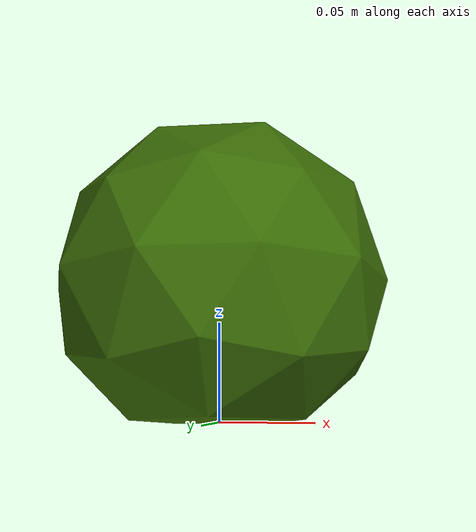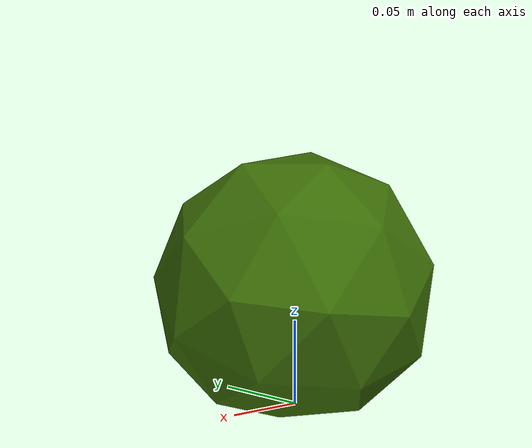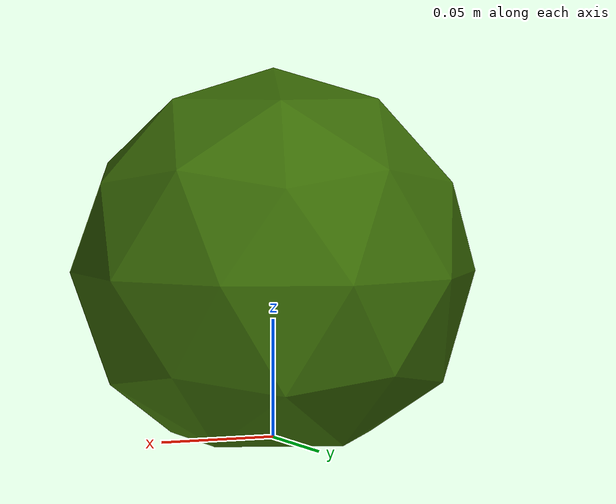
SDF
<?xml version="1.0"?>
<sdf version="1.5">
  <model name="vege">
    <link name="link">
    <collision name="collision">
        <geometry>
          <mesh>
            <uri>model://vege/meshes/vege.dae</uri>
          </mesh>
        </geometry>
      </collision>
      <visual name="visual">
        <cast_shadows>false</cast_shadows>
        <geometry>
          <mesh>
            <uri>model://vege/meshes/vege.dae</uri>
          </mesh>
        </geometry>
      </visual>
    </link>
  </model>
</sdf>
